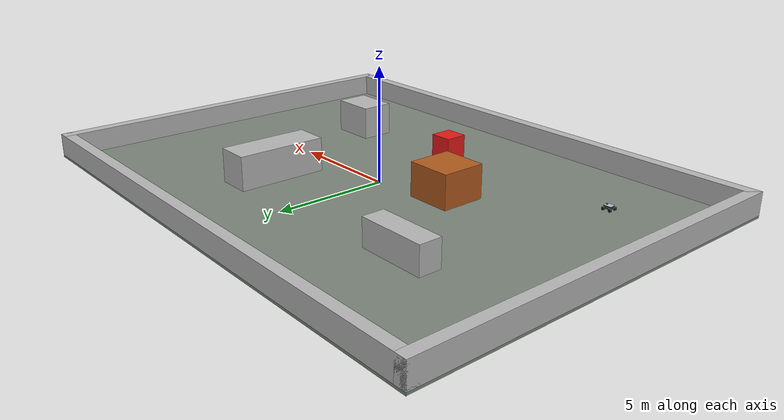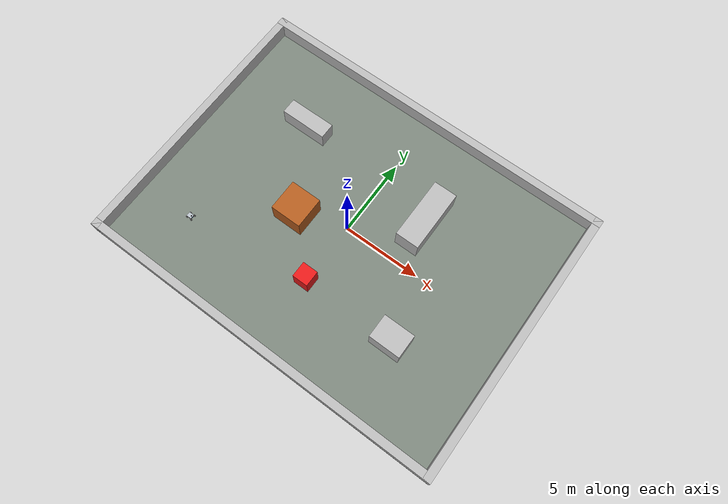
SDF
<?xml version="1.0"?>
<sdf version="1.9">
  <!-- R680 纯 UGV 测试场地：24x18 m 围墙 + 静态障碍。
       蓝本：air_ground_sim worlds/hunter_navigation_test.sdf（无人机内容已删除）。 -->
  <world name="r680_test_field">
    <physics name="1ms" type="ignore"><max_step_size>0.001</max_step_size><real_time_factor>1.0</real_time_factor></physics>
    <plugin filename="gz-sim-physics-system" name="gz::sim::systems::Physics"/>
    <plugin filename="gz-sim-sensors-system" name="gz::sim::systems::Sensors"><render_engine>ogre2</render_engine></plugin>
    <plugin filename="gz-sim-user-commands-system" name="gz::sim::systems::UserCommands"/>
    <plugin filename="gz-sim-scene-broadcaster-system" name="gz::sim::systems::SceneBroadcaster"/>
    <plugin filename="gz-sim-imu-system" name="gz::sim::systems::Imu"/>
    <scene><ambient>0.85 0.85 0.85 1</ambient><background>0.56 0.72 0.88 1</background><sky/></scene>
    <light type="directional" name="sun"><pose>0 0 20 0 0 0</pose><cast_shadows>true</cast_shadows><diffuse>0.9 0.9 0.9 1</diffuse><direction>-0.45 0.25 -0.86</direction></light>

    <model name="ground_plane"><static>true</static><link name="link"><pose>0 0 -0.05 0 0 0</pose><collision name="collision"><geometry><box><size>24 18 0.10</size></box></geometry></collision><visual name="visual"><geometry><box><size>24 18 0.10</size></box></geometry><material><ambient>0.42 0.46 0.42 1</ambient><diffuse>0.48 0.52 0.48 1</diffuse></material></visual></link></model>
    <model name="west_wall"><static>true</static><pose>-11.75 0 0.5 0 0 0</pose><link name="link"><collision name="collision"><geometry><box><size>0.5 18 1</size></box></geometry></collision><visual name="visual"><geometry><box><size>0.5 18 1</size></box></geometry></visual></link></model>
    <model name="east_wall"><static>true</static><pose>11.75 0 0.5 0 0 0</pose><link name="link"><collision name="collision"><geometry><box><size>0.5 18 1</size></box></geometry></collision><visual name="visual"><geometry><box><size>0.5 18 1</size></box></geometry></visual></link></model>
    <model name="north_wall"><static>true</static><pose>0 8.75 0.5 0 0 0</pose><link name="link"><collision name="collision"><geometry><box><size>24 0.5 1</size></box></geometry></collision><visual name="visual"><geometry><box><size>24 0.5 1</size></box></geometry></visual></link></model>
    <model name="south_wall"><static>true</static><pose>0 -8.75 0.5 0 0 0</pose><link name="link"><collision name="collision"><geometry><box><size>24 0.5 1</size></box></geometry></collision><visual name="visual"><geometry><box><size>24 0.5 1</size></box></geometry></visual></link></model>
    <model name="mapped_block_a"><static>true</static><pose>-3 -1 0.75 0 0 0</pose><link name="link"><collision name="collision"><geometry><box><size>2 2 1.5</size></box></geometry></collision><visual name="visual"><geometry><box><size>2 2 1.5</size></box></geometry><material><ambient>0.55 0.28 0.10 1</ambient><diffuse>0.70 0.36 0.12 1</diffuse></material></visual></link></model>
    <model name="mapped_block_b"><static>true</static><pose>3.5 3 0.75 0 0 0</pose><link name="link"><collision name="collision"><geometry><box><size>1.5 4 1.5</size></box></geometry></collision><visual name="visual"><geometry><box><size>1.5 4 1.5</size></box></geometry></visual></link></model>
    <model name="mapped_block_c"><static>true</static><pose>6 -4 0.75 0 0 0</pose><link name="link"><collision name="collision"><geometry><box><size>2 1.5 1.5</size></box></geometry></collision><visual name="visual"><geometry><box><size>2 1.5 1.5</size></box></geometry></visual></link></model>
    <model name="mapped_block_d"><static>true</static><pose>-6 4 0.6 0 0 0</pose><link name="link"><collision name="collision"><geometry><box><size>3 1 1.2</size></box></geometry></collision><visual name="visual"><geometry><box><size>3 1 1.2</size></box></geometry></visual></link></model>
    <model name="unmapped_temporary_obstacle"><static>true</static><pose>0 -4 0.65 0 0 0</pose><link name="link"><collision name="collision"><geometry><box><size>1 1 1.3</size></box></geometry></collision><visual name="visual"><geometry><box><size>1 1 1.3</size></box></geometry><material><ambient>0.70 0.08 0.08 1</ambient><diffuse>0.90 0.10 0.10 1</diffuse></material></visual></link></model>

    <!-- 实例名固定 ground_vehicle：gz topic 前缀 /model/ground_vehicle/... -->
    <include><uri>model://r680_4wd</uri><name>ground_vehicle</name><pose>-8 -5 0 0 0 0</pose></include>
  </world>
</sdf>

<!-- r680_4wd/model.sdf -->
<sdf version="1.9">
  <model name="r680_4wd">
    <self_collide>false</self_collide>

    <link name="base_link">
      <!-- base_link 与轮轴同高（轮半径 0.076） -->
      <pose>0 0 0.076 0 0 0</pose>
      <inertial>
        <mass>16.0</mass>
        <pose>0 0 0.070 0 0 0</pose>
        <inertia>
          <ixx>0.104700</ixx><iyy>0.144033</iyy><izz>0.233733</izz>
        </inertia>
      </inertial>
      <!-- 简化碰撞体：底部距地约 81 mm，不遮挡车轮 -->
      <collision name="body_collision">
        <pose>0 0 0.070 0 0 0</pose>
        <geometry><box><size>0.320 0.270 0.130</size></box></geometry>
      </collision>
      <visual name="body_visual">
        <pose>0 0 0.070 0 0 0</pose>
        <geometry><box><size>0.320 0.270 0.130</size></box></geometry>
        <material>
          <ambient>0.10 0.11 0.12 1</ambient>
          <diffuse>0.20 0.22 0.24 1</diffuse>
        </material>
      </visual>
      <!-- 上层安装铝板 -->
      <visual name="deck_visual">
        <pose>0 0 0.136 0 0 0</pose>
        <geometry><box><size>0.340 0.285 0.012</size></box></geometry>
        <material>
          <ambient>0.60 0.62 0.65 1</ambient>
          <diffuse>0.72 0.75 0.78 1</diffuse>
        </material>
      </visual>
    </link>

    <!-- 车轮 link 滚转 +90 度，关节局部 Z 轴即轮轴；
         正关节速度驱动车辆向 +X 前进。 -->
    <link name="front_left_wheel_link">
      <pose>0.155 0.160 0.076 1.57079632679 0 0</pose>
      <inertial><mass>1.2</mass><inertia><ixx>0.0021553</ixx><iyy>0.0021553</iyy><izz>0.0034656</izz></inertia></inertial>
      <collision name="collision">
        <geometry><cylinder><radius>0.076</radius><length>0.065</length></cylinder></geometry>
        <surface><friction><ode><mu>1.0</mu><mu2>1.0</mu2></ode></friction></surface>
      </collision>
      <visual name="visual">
        <geometry><cylinder><radius>0.076</radius><length>0.065</length></cylinder></geometry>
        <material><ambient>0.02 0.02 0.02 1</ambient><diffuse>0.05 0.05 0.05 1</diffuse></material>
      </visual>
    </link>
    <link name="front_right_wheel_link">
      <pose>0.155 -0.160 0.076 1.57079632679 0 0</pose>
      <inertial><mass>1.2</mass><inertia><ixx>0.0021553</ixx><iyy>0.0021553</iyy><izz>0.0034656</izz></inertia></inertial>
      <collision name="collision">
        <geometry><cylinder><radius>0.076</radius><length>0.065</length></cylinder></geometry>
        <surface><friction><ode><mu>1.0</mu><mu2>1.0</mu2></ode></friction></surface>
      </collision>
      <visual name="visual">
        <geometry><cylinder><radius>0.076</radius><length>0.065</length></cylinder></geometry>
        <material><ambient>0.02 0.02 0.02 1</ambient><diffuse>0.05 0.05 0.05 1</diffuse></material>
      </visual>
    </link>
    <link name="rear_left_wheel_link">
      <pose>-0.155 0.160 0.076 1.57079632679 0 0</pose>
      <inertial><mass>1.2</mass><inertia><ixx>0.0021553</ixx><iyy>0.0021553</iyy><izz>0.0034656</izz></inertia></inertial>
      <collision name="collision">
        <geometry><cylinder><radius>0.076</radius><length>0.065</length></cylinder></geometry>
        <surface><friction><ode><mu>1.0</mu><mu2>1.0</mu2></ode></friction></surface>
      </collision>
      <visual name="visual">
        <geometry><cylinder><radius>0.076</radius><length>0.065</length></cylinder></geometry>
        <material><ambient>0.02 0.02 0.02 1</ambient><diffuse>0.05 0.05 0.05 1</diffuse></material>
      </visual>
    </link>
    <link name="rear_right_wheel_link">
      <pose>-0.155 -0.160 0.076 1.57079632679 0 0</pose>
      <inertial><mass>1.2</mass><inertia><ixx>0.0021553</ixx><iyy>0.0021553</iyy><izz>0.0034656</izz></inertia></inertial>
      <collision name="collision">
        <geometry><cylinder><radius>0.076</radius><length>0.065</length></cylinder></geometry>
        <surface><friction><ode><mu>1.0</mu><mu2>1.0</mu2></ode></friction></surface>
      </collision>
      <visual name="visual">
        <geometry><cylinder><radius>0.076</radius><length>0.065</length></cylinder></geometry>
        <material><ambient>0.02 0.02 0.02 1</ambient><diffuse>0.05 0.05 0.05 1</diffuse></material>
      </visual>
    </link>

    <joint name="front_left_wheel_joint" type="revolute">
      <parent>base_link</parent><child>front_left_wheel_link</child>
      <axis><xyz>0 0 1</xyz><limit><lower>-1.0e16</lower><upper>1.0e16</upper></limit></axis>
    </joint>
    <joint name="front_right_wheel_joint" type="revolute">
      <parent>base_link</parent><child>front_right_wheel_link</child>
      <axis><xyz>0 0 1</xyz><limit><lower>-1.0e16</lower><upper>1.0e16</upper></limit></axis>
    </joint>
    <joint name="rear_left_wheel_joint" type="revolute">
      <parent>base_link</parent><child>rear_left_wheel_link</child>
      <axis><xyz>0 0 1</xyz><limit><lower>-1.0e16</lower><upper>1.0e16</upper></limit></axis>
    </joint>
    <joint name="rear_right_wheel_joint" type="revolute">
      <parent>base_link</parent><child>rear_right_wheel_link</child>
      <axis><xyz>0 0 1</xyz><limit><lower>-1.0e16</lower><upper>1.0e16</upper></limit></axis>
    </joint>

    <!-- 顶部激光雷达：URDF laser_frame 安装位 (0.100, 0, 0.162) -->
    <link name="laser_frame">
      <pose relative_to="base_link">0.100 0 0.162 0 0 0</pose>
      <gravity>false</gravity>
      <inertial><mass>0.220</mass><inertia><ixx>0.000125</ixx><iyy>0.000125</iyy><izz>0.000135</izz></inertia></inertial>
      <visual name="visual">
        <geometry><cylinder><radius>0.035</radius><length>0.040</length></cylinder></geometry>
        <material><ambient>0.03 0.04 0.05 1</ambient><diffuse>0.08 0.09 0.10 1</diffuse></material>
      </visual>
      <sensor name="lidar" type="gpu_lidar">
        <topic>/model/ground_vehicle/scan</topic>
        <gz_frame_id>laser_frame</gz_frame_id>
        <always_on>true</always_on><update_rate>6</update_rate><visualize>false</visualize>
        <lidar>
          <scan><horizontal><samples>360</samples><resolution>1</resolution><min_angle>-3.14159265359</min_angle><max_angle>3.14159265359</max_angle></horizontal></scan>
          <range><min>0.12</min><max>20.0</max><resolution>0.01</resolution></range>
          <noise><type>gaussian</type><mean>0.0</mean><stddev>0.01</stddev></noise>
        </lidar>
      </sensor>
    </link>
    <joint name="lidar_joint" type="fixed"><parent>base_link</parent><child>laser_frame</child></joint>

    <!-- 车头相机：URDF camera_link 安装位 (0.185, 0, 0.105)，X 朝车头 -->
    <link name="camera_link">
      <pose relative_to="base_link">0.185 0 0.105 0 0 0</pose>
      <gravity>false</gravity>
      <inertial><mass>0.080</mass><inertia><ixx>0.000015</ixx><iyy>0.000020</iyy><izz>0.000020</izz></inertia></inertial>
      <visual name="visual">
        <geometry><box><size>0.040 0.032 0.026</size></box></geometry>
        <material><ambient>0.02 0.20 0.45 1</ambient><diffuse>0.05 0.30 0.60 1</diffuse></material>
      </visual>
      <sensor name="front_camera" type="camera">
        <topic>/model/ground_vehicle/front_camera</topic>
        <gz_frame_id>camera_link</gz_frame_id>
        <always_on>true</always_on><update_rate>10</update_rate><visualize>false</visualize>
        <camera>
          <horizontal_fov>1.3962634</horizontal_fov>
          <image><width>320</width><height>180</height><format>R8G8B8</format></image>
          <clip><near>0.08</near><far>30.0</far></clip>
          <noise><type>gaussian</type><mean>0.0</mean><stddev>0.003</stddev></noise>
        </camera>
      </sensor>
    </link>
    <joint name="camera_joint" type="fixed"><parent>base_link</parent><child>camera_link</child></joint>

    <link name="imu_link">
      <pose relative_to="base_link">0 0 0.04 0 0 0</pose>
      <gravity>false</gravity>
      <inertial><mass>0.02</mass><inertia><ixx>0.00001</ixx><iyy>0.00001</iyy><izz>0.00001</izz></inertia></inertial>
      <sensor name="imu" type="imu">
        <topic>/model/ground_vehicle/imu</topic>
        <gz_frame_id>imu_link</gz_frame_id>
        <always_on>true</always_on><update_rate>50</update_rate>
      </sensor>
    </link>
    <joint name="imu_mount" type="fixed"><parent>base_link</parent><child>imu_link</child></joint>

    <plugin filename="gz-sim-diff-drive-system" name="gz::sim::systems::DiffDrive">
      <left_joint>front_left_wheel_joint</left_joint>
      <left_joint>rear_left_wheel_joint</left_joint>
      <right_joint>front_right_wheel_joint</right_joint>
      <right_joint>rear_right_wheel_joint</right_joint>
      <wheel_separation>0.32</wheel_separation>
      <wheel_radius>0.076</wheel_radius>
      <topic>/model/ground_vehicle/cmd_vel</topic>
      <odom_topic>/model/ground_vehicle/odometry</odom_topic>
      <tf_topic>/model/ground_vehicle/tf</tf_topic>
      <frame_id>odom</frame_id>
      <child_frame_id>base_footprint</child_frame_id>
      <odom_publish_frequency>30</odom_publish_frequency>
      <max_linear_acceleration>1.0</max_linear_acceleration>
      <max_angular_acceleration>2.0</max_angular_acceleration>
    </plugin>
  </model>
</sdf>
